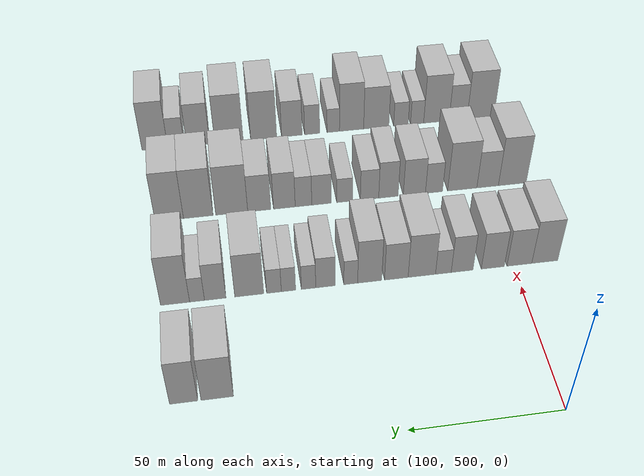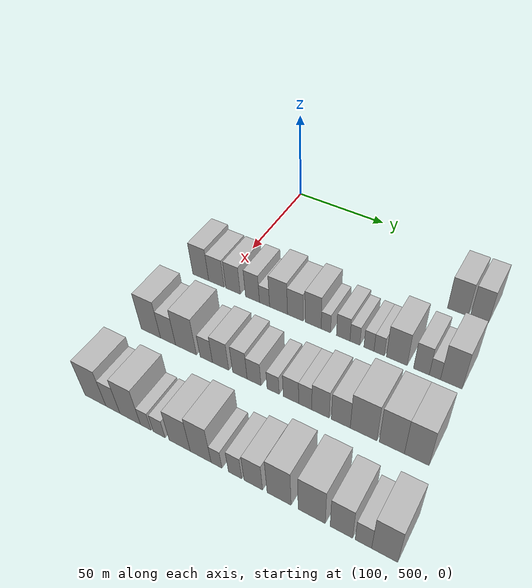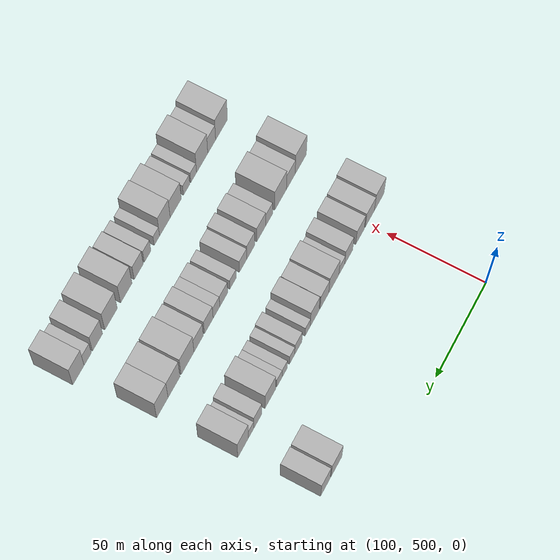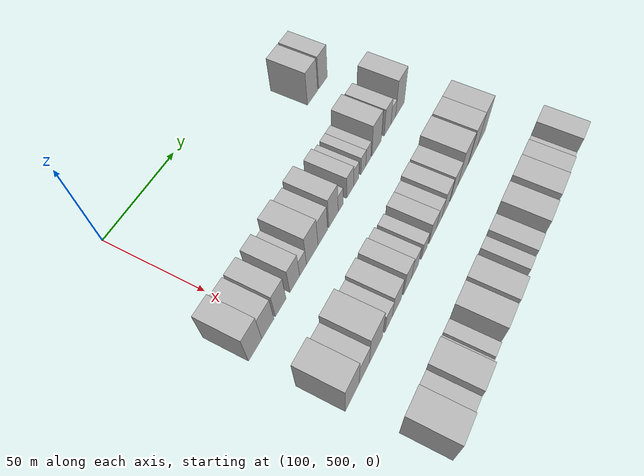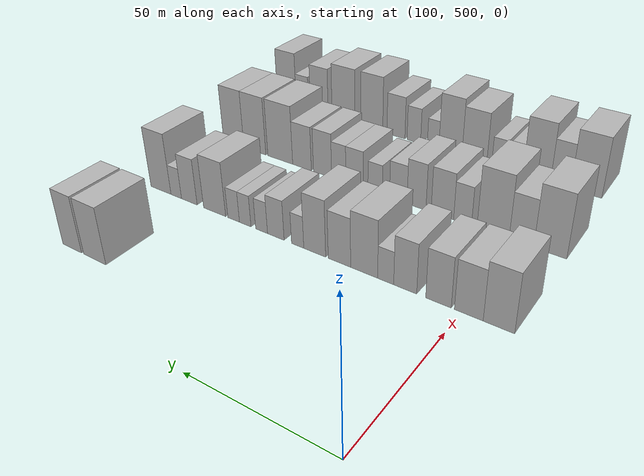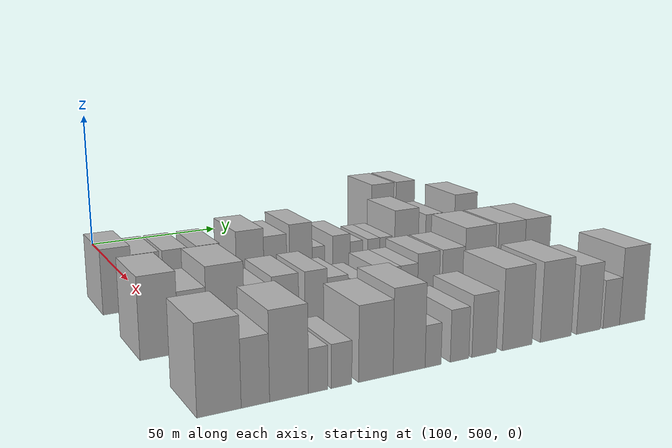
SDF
<sdf version="1.6">
 <world name="default">
  <model name="building_408">
   <static>1</static>
   <pose>130.0000 606.7160 0 0.000000 0.000000 0.000000</pose>
   <link name="link">
    <pose>0 0 10.50 0 0 0</pose>
    <collision name="collision"><geometry><box><size>20.0000 10.1430 21.0000</size></box></geometry></collision>
    <visual name="visual">
     <cast_shadows>0</cast_shadows>
     <geometry><box><size>20.0000 10.1430 21.0000</size></box></geometry>
     <material>
      <script>
       <uri>model://HANNAS_wall/materials/scripts</uri>
       <uri>model://HANNAS_wall/materials/textures</uri>
       <name>vrc/HANNAS_wall</name>
      </script>
     </material>
    </visual>
   </link>
  </model>
  <model name="building_409">
   <static>1</static>
   <pose>130.0000 617.1709 0 0.000000 0.000000 0.000000</pose>
   <link name="link">
    <pose>0 0 10.50 0 0 0</pose>
    <collision name="collision"><geometry><box><size>20.0000 8.7667 21.0000</size></box></geometry></collision>
    <visual name="visual">
     <cast_shadows>0</cast_shadows>
     <geometry><box><size>20.0000 8.7667 21.0000</size></box></geometry>
     <material>
      <script>
       <uri>model://HANNAS_wall/materials/scripts</uri>
       <uri>model://HANNAS_wall/materials/textures</uri>
       <name>vrc/HANNAS_wall</name>
      </script>
     </material>
    </visual>
   </link>
  </model>
  <model name="building_536">
   <static>1</static>
   <pose>170.0000 488.5739 0 0.000000 0.000000 0.000000</pose>
   <link name="link">
    <pose>0 0 10.50 0 0 0</pose>
    <collision name="collision"><geometry><box><size>20.0000 9.4898 21.0000</size></box></geometry></collision>
    <visual name="visual">
     <cast_shadows>0</cast_shadows>
     <geometry><box><size>20.0000 9.4898 21.0000</size></box></geometry>
     <material>
      <script>
       <uri>model://HANNAS_wall/materials/scripts</uri>
       <uri>model://HANNAS_wall/materials/textures</uri>
       <name>vrc/HANNAS_wall</name>
      </script>
     </material>
    </visual>
   </link>
  </model>
  <model name="building_537">
   <static>1</static>
   <pose>170.0000 497.8175 0 0.000000 0.000000 0.000000</pose>
   <link name="link">
    <pose>0 0 9.00 0 0 0</pose>
    <collision name="collision"><geometry><box><size>20.0000 8.9975 18.0000</size></box></geometry></collision>
    <visual name="visual">
     <cast_shadows>0</cast_shadows>
     <geometry><box><size>20.0000 8.9975 18.0000</size></box></geometry>
     <material>
      <script>
       <uri>model://HANNAS_wall/materials/scripts</uri>
       <uri>model://HANNAS_wall/materials/textures</uri>
       <name>vrc/HANNAS_wall</name>
      </script>
     </material>
    </visual>
   </link>
  </model>
  <model name="building_538">
   <static>1</static>
   <pose>170.0000 507.4683 0 0.000000 0.000000 0.000000</pose>
   <link name="link">
    <pose>0 0 9.00 0 0 0</pose>
    <collision name="collision"><geometry><box><size>20.0000 8.3039 18.0000</size></box></geometry></collision>
    <visual name="visual">
     <cast_shadows>0</cast_shadows>
     <geometry><box><size>20.0000 8.3039 18.0000</size></box></geometry>
     <material>
      <script>
       <uri>model://HANNAS_wall/materials/scripts</uri>
       <uri>model://HANNAS_wall/materials/textures</uri>
       <name>vrc/HANNAS_wall</name>
      </script>
     </material>
    </visual>
   </link>
  </model>
  <model name="building_539">
   <static>1</static>
   <pose>170.0000 518.5411 0 0.000000 0.000000 0.000000</pose>
   <link name="link">
    <pose>0 0 9.00 0 0 0</pose>
    <collision name="collision"><geometry><box><size>20.0000 7.8417 18.0000</size></box></geometry></collision>
    <visual name="visual">
     <cast_shadows>0</cast_shadows>
     <geometry><box><size>20.0000 7.8417 18.0000</size></box></geometry>
     <material>
      <script>
       <uri>model://HANNAS_wall/materials/scripts</uri>
       <uri>model://HANNAS_wall/materials/textures</uri>
       <name>vrc/HANNAS_wall</name>
      </script>
     </material>
    </visual>
   </link>
  </model>
  <model name="building_540">
   <static>1</static>
   <pose>170.0000 525.2688 0 0.000000 0.000000 0.000000</pose>
   <link name="link">
    <pose>0 0 6.00 0 0 0</pose>
    <collision name="collision"><geometry><box><size>20.0000 5.6138 12.0000</size></box></geometry></collision>
    <visual name="visual">
     <cast_shadows>0</cast_shadows>
     <geometry><box><size>20.0000 5.6138 12.0000</size></box></geometry>
     <material>
      <script>
       <uri>model://HANNAS_wall/materials/scripts</uri>
       <uri>model://HANNAS_wall/materials/textures</uri>
       <name>vrc/HANNAS_wall</name>
      </script>
     </material>
    </visual>
   </link>
  </model>
  <model name="building_541">
   <static>1</static>
   <pose>170.0000 532.9487 0 0.000000 0.000000 0.000000</pose>
   <link name="link">
    <pose>0 0 10.50 0 0 0</pose>
    <collision name="collision"><geometry><box><size>20.0000 9.7461 21.0000</size></box></geometry></collision>
    <visual name="visual">
     <cast_shadows>0</cast_shadows>
     <geometry><box><size>20.0000 9.7461 21.0000</size></box></geometry>
     <material>
      <script>
       <uri>model://HANNAS_wall/materials/scripts</uri>
       <uri>model://HANNAS_wall/materials/textures</uri>
       <name>vrc/HANNAS_wall</name>
      </script>
     </material>
    </visual>
   </link>
  </model>
  <model name="building_542">
   <static>1</static>
   <pose>170.0000 541.9989 0 0.000000 0.000000 0.000000</pose>
   <link name="link">
    <pose>0 0 9.00 0 0 0</pose>
    <collision name="collision"><geometry><box><size>20.0000 8.3542 18.0000</size></box></geometry></collision>
    <visual name="visual">
     <cast_shadows>0</cast_shadows>
     <geometry><box><size>20.0000 8.3542 18.0000</size></box></geometry>
     <material>
      <script>
       <uri>model://HANNAS_wall/materials/scripts</uri>
       <uri>model://HANNAS_wall/materials/textures</uri>
       <name>vrc/HANNAS_wall</name>
      </script>
     </material>
    </visual>
   </link>
  </model>
  <model name="building_543">
   <static>1</static>
   <pose>170.0000 551.4173 0 0.000000 0.000000 0.000000</pose>
   <link name="link">
    <pose>0 0 10.50 0 0 0</pose>
    <collision name="collision"><geometry><box><size>20.0000 8.4827 21.0000</size></box></geometry></collision>
    <visual name="visual">
     <cast_shadows>0</cast_shadows>
     <geometry><box><size>20.0000 8.4827 21.0000</size></box></geometry>
     <material>
      <script>
       <uri>model://HANNAS_wall/materials/scripts</uri>
       <uri>model://HANNAS_wall/materials/textures</uri>
       <name>vrc/HANNAS_wall</name>
      </script>
     </material>
    </visual>
   </link>
  </model>
  <model name="building_544">
   <static>1</static>
   <pose>170.0000 558.0807 0 0.000000 0.000000 0.000000</pose>
   <link name="link">
    <pose>0 0 6.00 0 0 0</pose>
    <collision name="collision"><geometry><box><size>20.0000 4.8441 12.0000</size></box></geometry></collision>
    <visual name="visual">
     <cast_shadows>0</cast_shadows>
     <geometry><box><size>20.0000 4.8441 12.0000</size></box></geometry>
     <material>
      <script>
       <uri>model://HANNAS_wall/materials/scripts</uri>
       <uri>model://HANNAS_wall/materials/textures</uri>
       <name>vrc/HANNAS_wall</name>
      </script>
     </material>
    </visual>
   </link>
  </model>
  <model name="building_545">
   <static>1</static>
   <pose>170.0000 566.9125 0 0.000000 0.000000 0.000000</pose>
   <link name="link">
    <pose>0 0 7.50 0 0 0</pose>
    <collision name="collision"><geometry><box><size>20.0000 6.8195 15.0000</size></box></geometry></collision>
    <visual name="visual">
     <cast_shadows>0</cast_shadows>
     <geometry><box><size>20.0000 6.8195 15.0000</size></box></geometry>
     <material>
      <script>
       <uri>model://HANNAS_wall/materials/scripts</uri>
       <uri>model://HANNAS_wall/materials/textures</uri>
       <name>vrc/HANNAS_wall</name>
      </script>
     </material>
    </visual>
   </link>
  </model>
  <model name="building_546">
   <static>1</static>
   <pose>170.0000 572.8079 0 0.000000 0.000000 0.000000</pose>
   <link name="link">
    <pose>0 0 6.00 0 0 0</pose>
    <collision name="collision"><geometry><box><size>20.0000 4.9712 12.0000</size></box></geometry></collision>
    <visual name="visual">
     <cast_shadows>0</cast_shadows>
     <geometry><box><size>20.0000 4.9712 12.0000</size></box></geometry>
     <material>
      <script>
       <uri>model://HANNAS_wall/materials/scripts</uri>
       <uri>model://HANNAS_wall/materials/textures</uri>
       <name>vrc/HANNAS_wall</name>
      </script>
     </material>
    </visual>
   </link>
  </model>
  <model name="building_547">
   <static>1</static>
   <pose>170.0000 579.7731 0 0.000000 0.000000 0.000000</pose>
   <link name="link">
    <pose>0 0 6.00 0 0 0</pose>
    <collision name="collision"><geometry><box><size>20.0000 4.9594 12.0000</size></box></geometry></collision>
    <visual name="visual">
     <cast_shadows>0</cast_shadows>
     <geometry><box><size>20.0000 4.9594 12.0000</size></box></geometry>
     <material>
      <script>
       <uri>model://HANNAS_wall/materials/scripts</uri>
       <uri>model://HANNAS_wall/materials/textures</uri>
       <name>vrc/HANNAS_wall</name>
      </script>
     </material>
    </visual>
   </link>
  </model>
  <model name="building_548">
   <static>1</static>
   <pose>170.0000 584.7847 0 0.000000 0.000000 0.000000</pose>
   <link name="link">
    <pose>0 0 6.00 0 0 0</pose>
    <collision name="collision"><geometry><box><size>20.0000 5.0638 12.0000</size></box></geometry></collision>
    <visual name="visual">
     <cast_shadows>0</cast_shadows>
     <geometry><box><size>20.0000 5.0638 12.0000</size></box></geometry>
     <material>
      <script>
       <uri>model://HANNAS_wall/materials/scripts</uri>
       <uri>model://HANNAS_wall/materials/textures</uri>
       <name>vrc/HANNAS_wall</name>
      </script>
     </material>
    </visual>
   </link>
  </model>
  <model name="building_549">
   <static>1</static>
   <pose>170.0000 593.2903 0 0.000000 0.000000 0.000000</pose>
   <link name="link">
    <pose>0 0 10.50 0 0 0</pose>
    <collision name="collision"><geometry><box><size>20.0000 9.9474 21.0000</size></box></geometry></collision>
    <visual name="visual">
     <cast_shadows>0</cast_shadows>
     <geometry><box><size>20.0000 9.9474 21.0000</size></box></geometry>
     <material>
      <script>
       <uri>model://HANNAS_wall/materials/scripts</uri>
       <uri>model://HANNAS_wall/materials/textures</uri>
       <name>vrc/HANNAS_wall</name>
      </script>
     </material>
    </visual>
   </link>
  </model>
  <model name="building_550">
   <static>1</static>
   <pose>170.0000 604.9289 0 0.000000 0.000000 0.000000</pose>
   <link name="link">
    <pose>0 0 9.00 0 0 0</pose>
    <collision name="collision"><geometry><box><size>20.0000 7.3298 18.0000</size></box></geometry></collision>
    <visual name="visual">
     <cast_shadows>0</cast_shadows>
     <geometry><box><size>20.0000 7.3298 18.0000</size></box></geometry>
     <material>
      <script>
       <uri>model://HANNAS_wall/materials/scripts</uri>
       <uri>model://HANNAS_wall/materials/textures</uri>
       <name>vrc/HANNAS_wall</name>
      </script>
     </material>
    </visual>
   </link>
  </model>
  <model name="building_551">
   <static>1</static>
   <pose>170.0000 611.1289 0 0.000000 0.000000 0.000000</pose>
   <link name="link">
    <pose>0 0 6.00 0 0 0</pose>
    <collision name="collision"><geometry><box><size>20.0000 5.0702 12.0000</size></box></geometry></collision>
    <visual name="visual">
     <cast_shadows>0</cast_shadows>
     <geometry><box><size>20.0000 5.0702 12.0000</size></box></geometry>
     <material>
      <script>
       <uri>model://HANNAS_wall/materials/scripts</uri>
       <uri>model://HANNAS_wall/materials/textures</uri>
       <name>vrc/HANNAS_wall</name>
      </script>
     </material>
    </visual>
   </link>
  </model>
  <model name="building_552">
   <static>1</static>
   <pose>170.0000 618.5764 0 0.000000 0.000000 0.000000</pose>
   <link name="link">
    <pose>0 0 12.00 0 0 0</pose>
    <collision name="collision"><geometry><box><size>20.0000 9.8249 24.0000</size></box></geometry></collision>
    <visual name="visual">
     <cast_shadows>0</cast_shadows>
     <geometry><box><size>20.0000 9.8249 24.0000</size></box></geometry>
     <material>
      <script>
       <uri>model://HANNAS_wall/materials/scripts</uri>
       <uri>model://HANNAS_wall/materials/textures</uri>
       <name>vrc/HANNAS_wall</name>
      </script>
     </material>
    </visual>
   </link>
  </model>
  <model name="building_672">
   <static>1</static>
   <pose>210.0000 489.1934 0 0.000000 0.000000 0.000000</pose>
   <link name="link">
    <pose>0 0 12.00 0 0 0</pose>
    <collision name="collision"><geometry><box><size>20.0000 10.9397 24.0000</size></box></geometry></collision>
    <visual name="visual">
     <cast_shadows>0</cast_shadows>
     <geometry><box><size>20.0000 10.9397 24.0000</size></box></geometry>
     <material>
      <script>
       <uri>model://HANNAS_wall/materials/scripts</uri>
       <uri>model://HANNAS_wall/materials/textures</uri>
       <name>vrc/HANNAS_wall</name>
      </script>
     </material>
    </visual>
   </link>
  </model>
  <model name="building_673">
   <static>1</static>
   <pose>210.0000 498.8748 0 0.000000 0.000000 0.000000</pose>
   <link name="link">
    <pose>0 0 9.00 0 0 0</pose>
    <collision name="collision"><geometry><box><size>20.0000 8.4231 18.0000</size></box></geometry></collision>
    <visual name="visual">
     <cast_shadows>0</cast_shadows>
     <geometry><box><size>20.0000 8.4231 18.0000</size></box></geometry>
     <material>
      <script>
       <uri>model://HANNAS_wall/materials/scripts</uri>
       <uri>model://HANNAS_wall/materials/textures</uri>
       <name>vrc/HANNAS_wall</name>
      </script>
     </material>
    </visual>
   </link>
  </model>
  <model name="building_674">
   <static>1</static>
   <pose>210.0000 508.7811 0 0.000000 0.000000 0.000000</pose>
   <link name="link">
    <pose>0 0 12.00 0 0 0</pose>
    <collision name="collision"><geometry><box><size>20.0000 11.3895 24.0000</size></box></geometry></collision>
    <visual name="visual">
     <cast_shadows>0</cast_shadows>
     <geometry><box><size>20.0000 11.3895 24.0000</size></box></geometry>
     <material>
      <script>
       <uri>model://HANNAS_wall/materials/scripts</uri>
       <uri>model://HANNAS_wall/materials/textures</uri>
       <name>vrc/HANNAS_wall</name>
      </script>
     </material>
    </visual>
   </link>
  </model>
  <model name="building_675">
   <static>1</static>
   <pose>210.0000 519.7817 0 0.000000 0.000000 0.000000</pose>
   <link name="link">
    <pose>0 0 7.50 0 0 0</pose>
    <collision name="collision"><geometry><box><size>20.0000 6.6116 15.0000</size></box></geometry></collision>
    <visual name="visual">
     <cast_shadows>0</cast_shadows>
     <geometry><box><size>20.0000 6.6116 15.0000</size></box></geometry>
     <material>
      <script>
       <uri>model://HANNAS_wall/materials/scripts</uri>
       <uri>model://HANNAS_wall/materials/textures</uri>
       <name>vrc/HANNAS_wall</name>
      </script>
     </material>
    </visual>
   </link>
  </model>
  <model name="building_676">
   <static>1</static>
   <pose>210.0000 527.3534 0 0.000000 0.000000 0.000000</pose>
   <link name="link">
    <pose>0 0 9.00 0 0 0</pose>
    <collision name="collision"><geometry><box><size>20.0000 8.5319 18.0000</size></box></geometry></collision>
    <visual name="visual">
     <cast_shadows>0</cast_shadows>
     <geometry><box><size>20.0000 8.5319 18.0000</size></box></geometry>
     <material>
      <script>
       <uri>model://HANNAS_wall/materials/scripts</uri>
       <uri>model://HANNAS_wall/materials/textures</uri>
       <name>vrc/HANNAS_wall</name>
      </script>
     </material>
    </visual>
   </link>
  </model>
  <model name="building_677">
   <static>1</static>
   <pose>210.0000 537.3360 0 0.000000 0.000000 0.000000</pose>
   <link name="link">
    <pose>0 0 9.00 0 0 0</pose>
    <collision name="collision"><geometry><box><size>20.0000 7.4332 18.0000</size></box></geometry></collision>
    <visual name="visual">
     <cast_shadows>0</cast_shadows>
     <geometry><box><size>20.0000 7.4332 18.0000</size></box></geometry>
     <material>
      <script>
       <uri>model://HANNAS_wall/materials/scripts</uri>
       <uri>model://HANNAS_wall/materials/textures</uri>
       <name>vrc/HANNAS_wall</name>
      </script>
     </material>
    </visual>
   </link>
  </model>
  <model name="building_678">
   <static>1</static>
   <pose>210.0000 544.5583 0 0.000000 0.000000 0.000000</pose>
   <link name="link">
    <pose>0 0 7.50 0 0 0</pose>
    <collision name="collision"><geometry><box><size>20.0000 7.0115 15.0000</size></box></geometry></collision>
    <visual name="visual">
     <cast_shadows>0</cast_shadows>
     <geometry><box><size>20.0000 7.0115 15.0000</size></box></geometry>
     <material>
      <script>
       <uri>model://HANNAS_wall/materials/scripts</uri>
       <uri>model://HANNAS_wall/materials/textures</uri>
       <name>vrc/HANNAS_wall</name>
      </script>
     </material>
    </visual>
   </link>
  </model>
  <model name="building_679">
   <static>1</static>
   <pose>210.0000 554.0517 0 0.000000 0.000000 0.000000</pose>
   <link name="link">
    <pose>0 0 6.00 0 0 0</pose>
    <collision name="collision"><geometry><box><size>20.0000 5.9753 12.0000</size></box></geometry></collision>
    <visual name="visual">
     <cast_shadows>0</cast_shadows>
     <geometry><box><size>20.0000 5.9753 12.0000</size></box></geometry>
     <material>
      <script>
       <uri>model://HANNAS_wall/materials/scripts</uri>
       <uri>model://HANNAS_wall/materials/textures</uri>
       <name>vrc/HANNAS_wall</name>
      </script>
     </material>
    </visual>
   </link>
  </model>
  <model name="building_680">
   <static>1</static>
   <pose>210.0000 562.7595 0 0.000000 0.000000 0.000000</pose>
   <link name="link">
    <pose>0 0 7.50 0 0 0</pose>
    <collision name="collision"><geometry><box><size>20.0000 7.4402 15.0000</size></box></geometry></collision>
    <visual name="visual">
     <cast_shadows>0</cast_shadows>
     <geometry><box><size>20.0000 7.4402 15.0000</size></box></geometry>
     <material>
      <script>
       <uri>model://HANNAS_wall/materials/scripts</uri>
       <uri>model://HANNAS_wall/materials/textures</uri>
       <name>vrc/HANNAS_wall</name>
      </script>
     </material>
    </visual>
   </link>
  </model>
  <model name="building_681">
   <static>1</static>
   <pose>210.0000 569.5972 0 0.000000 0.000000 0.000000</pose>
   <link name="link">
    <pose>0 0 7.50 0 0 0</pose>
    <collision name="collision"><geometry><box><size>20.0000 6.2354 15.0000</size></box></geometry></collision>
    <visual name="visual">
     <cast_shadows>0</cast_shadows>
     <geometry><box><size>20.0000 6.2354 15.0000</size></box></geometry>
     <material>
      <script>
       <uri>model://HANNAS_wall/materials/scripts</uri>
       <uri>model://HANNAS_wall/materials/textures</uri>
       <name>vrc/HANNAS_wall</name>
      </script>
     </material>
    </visual>
   </link>
  </model>
  <model name="building_682">
   <static>1</static>
   <pose>210.0000 576.7744 0 0.000000 0.000000 0.000000</pose>
   <link name="link">
    <pose>0 0 9.00 0 0 0</pose>
    <collision name="collision"><geometry><box><size>20.0000 8.1190 18.0000</size></box></geometry></collision>
    <visual name="visual">
     <cast_shadows>0</cast_shadows>
     <geometry><box><size>20.0000 8.1190 18.0000</size></box></geometry>
     <material>
      <script>
       <uri>model://HANNAS_wall/materials/scripts</uri>
       <uri>model://HANNAS_wall/materials/textures</uri>
       <name>vrc/HANNAS_wall</name>
      </script>
     </material>
    </visual>
   </link>
  </model>
  <model name="building_683">
   <static>1</static>
   <pose>210.0000 586.1523 0 0.000000 0.000000 0.000000</pose>
   <link name="link">
    <pose>0 0 9.00 0 0 0</pose>
    <collision name="collision"><geometry><box><size>20.0000 8.6367 18.0000</size></box></geometry></collision>
    <visual name="visual">
     <cast_shadows>0</cast_shadows>
     <geometry><box><size>20.0000 8.6367 18.0000</size></box></geometry>
     <material>
      <script>
       <uri>model://HANNAS_wall/materials/scripts</uri>
       <uri>model://HANNAS_wall/materials/textures</uri>
       <name>vrc/HANNAS_wall</name>
      </script>
     </material>
    </visual>
   </link>
  </model>
  <model name="building_684">
   <static>1</static>
   <pose>210.0000 596.4003 0 0.000000 0.000000 0.000000</pose>
   <link name="link">
    <pose>0 0 12.00 0 0 0</pose>
    <collision name="collision"><geometry><box><size>20.0000 11.8593 24.0000</size></box></geometry></collision>
    <visual name="visual">
     <cast_shadows>0</cast_shadows>
     <geometry><box><size>20.0000 11.8593 24.0000</size></box></geometry>
     <material>
      <script>
       <uri>model://HANNAS_wall/materials/scripts</uri>
       <uri>model://HANNAS_wall/materials/textures</uri>
       <name>vrc/HANNAS_wall</name>
      </script>
     </material>
    </visual>
   </link>
  </model>
  <model name="building_685">
   <static>1</static>
   <pose>210.0000 608.7782 0 0.000000 0.000000 0.000000</pose>
   <link name="link">
    <pose>0 0 12.00 0 0 0</pose>
    <collision name="collision"><geometry><box><size>20.0000 10.8964 24.0000</size></box></geometry></collision>
    <visual name="visual">
     <cast_shadows>0</cast_shadows>
     <geometry><box><size>20.0000 10.8964 24.0000</size></box></geometry>
     <material>
      <script>
       <uri>model://HANNAS_wall/materials/scripts</uri>
       <uri>model://HANNAS_wall/materials/textures</uri>
       <name>vrc/HANNAS_wall</name>
      </script>
     </material>
    </visual>
   </link>
  </model>
  <model name="building_686">
   <static>1</static>
   <pose>210.0000 619.4271 0 0.000000 0.000000 0.000000</pose>
   <link name="link">
    <pose>0 0 12.00 0 0 0</pose>
    <collision name="collision"><geometry><box><size>20.0000 10.4014 24.0000</size></box></geometry></collision>
    <visual name="visual">
     <cast_shadows>0</cast_shadows>
     <geometry><box><size>20.0000 10.4014 24.0000</size></box></geometry>
     <material>
      <script>
       <uri>model://HANNAS_wall/materials/scripts</uri>
       <uri>model://HANNAS_wall/materials/textures</uri>
       <name>vrc/HANNAS_wall</name>
      </script>
     </material>
    </visual>
   </link>
  </model>
  <model name="building_801">
   <static>1</static>
   <pose>250.0000 491.4264 0 0.000000 0.000000 0.000000</pose>
   <link name="link">
    <pose>0 0 12.00 0 0 0</pose>
    <collision name="collision"><geometry><box><size>20.0000 11.3466 24.0000</size></box></geometry></collision>
    <visual name="visual">
     <cast_shadows>0</cast_shadows>
     <geometry><box><size>20.0000 11.3466 24.0000</size></box></geometry>
     <material>
      <script>
       <uri>model://HANNAS_wall/materials/scripts</uri>
       <uri>model://HANNAS_wall/materials/textures</uri>
       <name>vrc/HANNAS_wall</name>
      </script>
     </material>
    </visual>
   </link>
  </model>
  <model name="building_802">
   <static>1</static>
   <pose>250.0000 500.8604 0 0.000000 0.000000 0.000000</pose>
   <link name="link">
    <pose>0 0 9.00 0 0 0</pose>
    <collision name="collision"><geometry><box><size>20.0000 7.5213 18.0000</size></box></geometry></collision>
    <visual name="visual">
     <cast_shadows>0</cast_shadows>
     <geometry><box><size>20.0000 7.5213 18.0000</size></box></geometry>
     <material>
      <script>
       <uri>model://HANNAS_wall/materials/scripts</uri>
       <uri>model://HANNAS_wall/materials/textures</uri>
       <name>vrc/HANNAS_wall</name>
      </script>
     </material>
    </visual>
   </link>
  </model>
  <model name="building_803">
   <static>1</static>
   <pose>250.0000 509.9373 0 0.000000 0.000000 0.000000</pose>
   <link name="link">
    <pose>0 0 12.00 0 0 0</pose>
    <collision name="collision"><geometry><box><size>20.0000 10.6327 24.0000</size></box></geometry></collision>
    <visual name="visual">
     <cast_shadows>0</cast_shadows>
     <geometry><box><size>20.0000 10.6327 24.0000</size></box></geometry>
     <material>
      <script>
       <uri>model://HANNAS_wall/materials/scripts</uri>
       <uri>model://HANNAS_wall/materials/textures</uri>
       <name>vrc/HANNAS_wall</name>
      </script>
     </material>
    </visual>
   </link>
  </model>
  <model name="building_804">
   <static>1</static>
   <pose>250.0000 517.9733 0 0.000000 0.000000 0.000000</pose>
   <link name="link">
    <pose>0 0 6.00 0 0 0</pose>
    <collision name="collision"><geometry><box><size>20.0000 5.4393 12.0000</size></box></geometry></collision>
    <visual name="visual">
     <cast_shadows>0</cast_shadows>
     <geometry><box><size>20.0000 5.4393 12.0000</size></box></geometry>
     <material>
      <script>
       <uri>model://HANNAS_wall/materials/scripts</uri>
       <uri>model://HANNAS_wall/materials/textures</uri>
       <name>vrc/HANNAS_wall</name>
      </script>
     </material>
    </visual>
   </link>
  </model>
  <model name="building_805">
   <static>1</static>
   <pose>250.0000 524.6874 0 0.000000 0.000000 0.000000</pose>
   <link name="link">
    <pose>0 0 6.00 0 0 0</pose>
    <collision name="collision"><geometry><box><size>20.0000 5.9889 12.0000</size></box></geometry></collision>
    <visual name="visual">
     <cast_shadows>0</cast_shadows>
     <geometry><box><size>20.0000 5.9889 12.0000</size></box></geometry>
     <material>
      <script>
       <uri>model://HANNAS_wall/materials/scripts</uri>
       <uri>model://HANNAS_wall/materials/textures</uri>
       <name>vrc/HANNAS_wall</name>
      </script>
     </material>
    </visual>
   </link>
  </model>
  <model name="building_806">
   <static>1</static>
   <pose>250.0000 534.8649 0 0.000000 0.000000 0.000000</pose>
   <link name="link">
    <pose>0 0 10.50 0 0 0</pose>
    <collision name="collision"><geometry><box><size>20.0000 10.3660 21.0000</size></box></geometry></collision>
    <visual name="visual">
     <cast_shadows>0</cast_shadows>
     <geometry><box><size>20.0000 10.3660 21.0000</size></box></geometry>
     <material>
      <script>
       <uri>model://HANNAS_wall/materials/scripts</uri>
       <uri>model://HANNAS_wall/materials/textures</uri>
       <name>vrc/HANNAS_wall</name>
      </script>
     </material>
    </visual>
   </link>
  </model>
  <model name="building_807">
   <static>1</static>
   <pose>250.0000 545.0107 0 0.000000 0.000000 0.000000</pose>
   <link name="link">
    <pose>0 0 12.00 0 0 0</pose>
    <collision name="collision"><geometry><box><size>20.0000 9.9256 24.0000</size></box></geometry></collision>
    <visual name="visual">
     <cast_shadows>0</cast_shadows>
     <geometry><box><size>20.0000 9.9256 24.0000</size></box></geometry>
     <material>
      <script>
       <uri>model://HANNAS_wall/materials/scripts</uri>
       <uri>model://HANNAS_wall/materials/textures</uri>
       <name>vrc/HANNAS_wall</name>
      </script>
     </material>
    </visual>
   </link>
  </model>
  <model name="building_808">
   <static>1</static>
   <pose>250.0000 552.5122 0 0.000000 0.000000 0.000000</pose>
   <link name="link">
    <pose>0 0 6.00 0 0 0</pose>
    <collision name="collision"><geometry><box><size>20.0000 5.0774 12.0000</size></box></geometry></collision>
    <visual name="visual">
     <cast_shadows>0</cast_shadows>
     <geometry><box><size>20.0000 5.0774 12.0000</size></box></geometry>
     <material>
      <script>
       <uri>model://HANNAS_wall/materials/scripts</uri>
       <uri>model://HANNAS_wall/materials/textures</uri>
       <name>vrc/HANNAS_wall</name>
      </script>
     </material>
    </visual>
   </link>
  </model>
  <model name="building_809">
   <static>1</static>
   <pose>250.0000 561.1104 0 0.000000 0.000000 0.000000</pose>
   <link name="link">
    <pose>0 0 7.50 0 0 0</pose>
    <collision name="collision"><geometry><box><size>20.0000 6.1191 15.0000</size></box></geometry></collision>
    <visual name="visual">
     <cast_shadows>0</cast_shadows>
     <geometry><box><size>20.0000 6.1191 15.0000</size></box></geometry>
     <material>
      <script>
       <uri>model://HANNAS_wall/materials/scripts</uri>
       <uri>model://HANNAS_wall/materials/textures</uri>
       <name>vrc/HANNAS_wall</name>
      </script>
     </material>
    </visual>
   </link>
  </model>
  <model name="building_810">
   <static>1</static>
   <pose>250.0000 569.3221 0 0.000000 0.000000 0.000000</pose>
   <link name="link">
    <pose>0 0 9.00 0 0 0</pose>
    <collision name="collision"><geometry><box><size>20.0000 8.3042 18.0000</size></box></geometry></collision>
    <visual name="visual">
     <cast_shadows>0</cast_shadows>
     <geometry><box><size>20.0000 8.3042 18.0000</size></box></geometry>
     <material>
      <script>
       <uri>model://HANNAS_wall/materials/scripts</uri>
       <uri>model://HANNAS_wall/materials/textures</uri>
       <name>vrc/HANNAS_wall</name>
      </script>
     </material>
    </visual>
   </link>
  </model>
  <model name="building_811">
   <static>1</static>
   <pose>250.0000 580.6978 0 0.000000 0.000000 0.000000</pose>
   <link name="link">
    <pose>0 0 12.00 0 0 0</pose>
    <collision name="collision"><geometry><box><size>20.0000 10.4472 24.0000</size></box></geometry></collision>
    <visual name="visual">
     <cast_shadows>0</cast_shadows>
     <geometry><box><size>20.0000 10.4472 24.0000</size></box></geometry>
     <material>
      <script>
       <uri>model://HANNAS_wall/materials/scripts</uri>
       <uri>model://HANNAS_wall/materials/textures</uri>
       <name>vrc/HANNAS_wall</name>
      </script>
     </material>
    </visual>
   </link>
  </model>
  <model name="building_812">
   <static>1</static>
   <pose>250.0000 594.6039 0 0.000000 0.000000 0.000000</pose>
   <link name="link">
    <pose>0 0 12.00 0 0 0</pose>
    <collision name="collision"><geometry><box><size>20.0000 11.3650 24.0000</size></box></geometry></collision>
    <visual name="visual">
     <cast_shadows>0</cast_shadows>
     <geometry><box><size>20.0000 11.3650 24.0000</size></box></geometry>
     <material>
      <script>
       <uri>model://HANNAS_wall/materials/scripts</uri>
       <uri>model://HANNAS_wall/materials/textures</uri>
       <name>vrc/HANNAS_wall</name>
      </script>
     </material>
    </visual>
   </link>
  </model>
  <model name="building_813">
   <static>1</static>
   <pose>250.0000 606.8397 0 0.000000 0.000000 0.000000</pose>
   <link name="link">
    <pose>0 0 10.50 0 0 0</pose>
    <collision name="collision"><geometry><box><size>20.0000 9.1066 21.0000</size></box></geometry></collision>
    <visual name="visual">
     <cast_shadows>0</cast_shadows>
     <geometry><box><size>20.0000 9.1066 21.0000</size></box></geometry>
     <material>
      <script>
       <uri>model://HANNAS_wall/materials/scripts</uri>
       <uri>model://HANNAS_wall/materials/textures</uri>
       <name>vrc/HANNAS_wall</name>
      </script>
     </material>
    </visual>
   </link>
  </model>
  <model name="building_814">
   <static>1</static>
   <pose>250.0000 615.6516 0 0.000000 0.000000 0.000000</pose>
   <link name="link">
    <pose>0 0 7.50 0 0 0</pose>
    <collision name="collision"><geometry><box><size>20.0000 6.5172 15.0000</size></box></geometry></collision>
    <visual name="visual">
     <cast_shadows>0</cast_shadows>
     <geometry><box><size>20.0000 6.5172 15.0000</size></box></geometry>
     <material>
      <script>
       <uri>model://HANNAS_wall/materials/scripts</uri>
       <uri>model://HANNAS_wall/materials/textures</uri>
       <name>vrc/HANNAS_wall</name>
      </script>
     </material>
    </visual>
   </link>
  </model>
  <model name="building_815">
   <static>1</static>
   <pose>250.0000 623.9781 0 0.000000 0.000000 0.000000</pose>
   <link name="link">
    <pose>0 0 12.00 0 0 0</pose>
    <collision name="collision"><geometry><box><size>20.0000 10.1360 24.0000</size></box></geometry></collision>
    <visual name="visual">
     <cast_shadows>0</cast_shadows>
     <geometry><box><size>20.0000 10.1360 24.0000</size></box></geometry>
     <material>
      <script>
       <uri>model://HANNAS_wall/materials/scripts</uri>
       <uri>model://HANNAS_wall/materials/textures</uri>
       <name>vrc/HANNAS_wall</name>
      </script>
     </material>
    </visual>
   </link>
  </model>
 </world>
</sdf>
